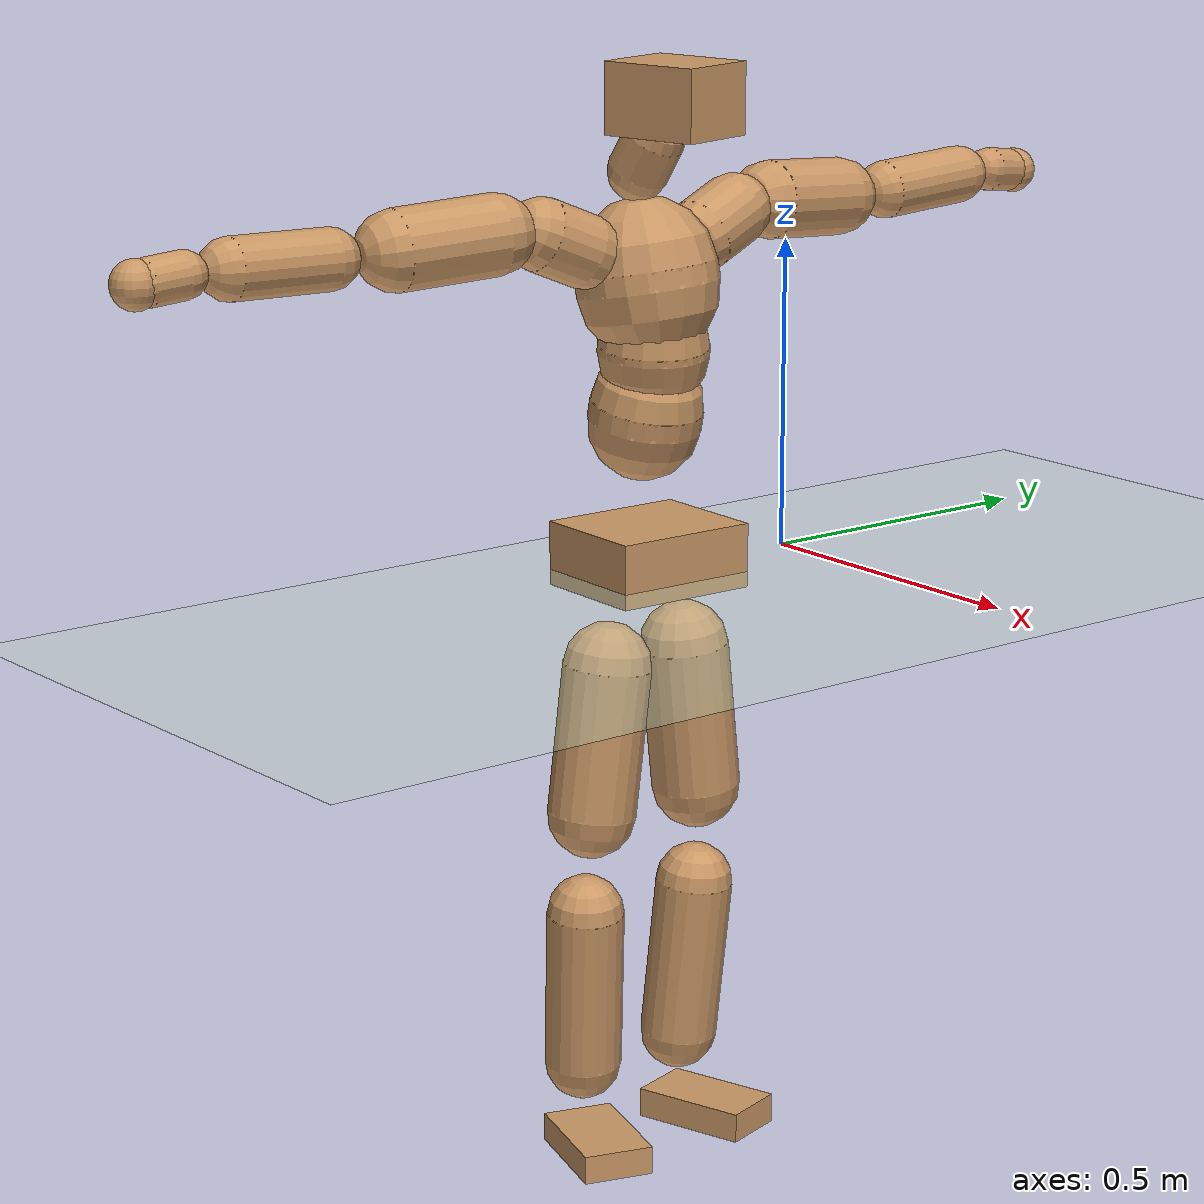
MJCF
<mujoco model="humanoid">
  <compiler coordinate="local" angle="radian"/>
  <default>
    <joint damping="0.0" armature="0.01" stiffness="0.0" limited="true"/>
    <geom conaffinity="1" condim="3" contype="7" margin="0.001" rgba="0.8 0.6 .4 1"/>
  </default>
  <asset>
    <texture type="skybox" builtin="gradient" rgb1=".4 .5 .6" rgb2="0 0 0" width="100" height="100"/>
    <texture builtin="flat" height="1278" mark="cross" markrgb="1 1 1" name="texgeom" random="0.01" rgb1="0.8 0.6 0.4" rgb2="0.8 0.6 0.4" type="cube" width="127"/>
    <texture builtin="checker" height="100" name="texplane" rgb1="0 0 0" rgb2="0.8 0.8 0.8" type="2d" width="100"/>
    <material name="MatPlane" reflectance="0.5" shininess="1" specular="1" texrepeat="60 60" texture="texplane"/>
    <material name="geom" texture="texgeom" texuniform="true"/>
  </asset>
  <worldbody>
    <light cutoff="100" diffuse="1 1 1" dir="-0 0 -1.3" directional="true" exponent="1" pos="0 0 1.3" specular=".1 .1 .1"/>
    <geom conaffinity="1" condim="3" name="floor" pos="0 0 0" rgba="0.8 0.9 0.8 1" size="100 100 .2" type="plane" material="MatPlane"/>
    <body name="Pelvis" pos="-0.0009 -0.2672 0.0328">
      <freejoint name="Pelvis"/>
      <geom type="box" contype="1" conaffinity="1" density="500" pos="-0.0131 0.0003 -0.0087" size="0.0999 0.1205 0.0517" quat="0.9999 0.0000 0.0000 -0.0130" name="Pelvis"/>
      <body name="L_Hip" pos="-0.0188 0.0688 -0.0908">
        <joint name="L_Hip_x" type="hinge" pos="0 0 0" axis="1 0 0" stiffness="800" damping="80" armature="0.02" range="-180.0000 180.0000"/>
        <joint name="L_Hip_y" type="hinge" pos="0 0 0" axis="0 1 0" stiffness="800" damping="80" armature="0.02" range="-180.0000 180.0000"/>
        <joint name="L_Hip_z" type="hinge" pos="0 0 0" axis="0 0 1" stiffness="800" damping="80" armature="0.02" range="-180.0000 180.0000"/>
        <geom type="capsule" contype="1" conaffinity="1" density="500" fromto="0.0003 0.0086 -0.0802 0.0014 0.0344 -0.3208" size="0.0719" name="L_Hip"/>
        <body name="L_Knee" pos="0.0017 0.043 -0.401">
          <joint name="L_Knee_x" type="hinge" pos="0 0 0" axis="1 0 0" stiffness="800" damping="80" armature="0.02" range="-180.0000 180.0000"/>
          <joint name="L_Knee_y" type="hinge" pos="0 0 0" axis="0 1 0" stiffness="800" damping="80" armature="0.02" range="-180.0000 180.0000"/>
          <joint name="L_Knee_z" type="hinge" pos="0 0 0" axis="0 0 1" stiffness="800" damping="80" armature="0.02" range="-180.0000 180.0000"/>
          <geom type="capsule" contype="1" conaffinity="1" density="500" fromto="-0.0089 -0.0035 -0.0901 -0.0356 -0.0140 -0.3604" size="0.0631" name="L_Knee"/>
          <body name="L_Ankle" pos="-0.0445 -0.0175 -0.4506">
            <joint name="L_Ankle_x" type="hinge" pos="0 0 0" axis="1 0 0" stiffness="800" damping="80" armature="0.02" range="-180.0000 180.0000"/>
            <joint name="L_Ankle_y" type="hinge" pos="0 0 0" axis="0 1 0" stiffness="800" damping="80" armature="0.02" range="-180.0000 180.0000"/>
            <joint name="L_Ankle_z" type="hinge" pos="0 0 0" axis="0 0 1" stiffness="800" damping="80" armature="0.02" range="-180.0000 180.0000"/>
            <geom type="box" contype="1" conaffinity="1" density="500" pos="0.0645 0.0189 -0.0317" size="0.0956 0.0539 0.0242" quat="0.9898 0.0000 0.0000 0.1421" name="L_Ankle"/>
            <body name="L_Toe" pos="0.129 0.0378 -0.0634">
              <joint name="L_Toe_x" type="hinge" pos="0 0 0" axis="1 0 0" stiffness="500" damping="50" armature="0.02" range="-180.0000 180.0000"/>
              <joint name="L_Toe_y" type="hinge" pos="0 0 0" axis="0 1 0" stiffness="500" damping="50" armature="0.02" range="-180.0000 180.0000"/>
              <joint name="L_Toe_z" type="hinge" pos="0 0 0" axis="0 0 1" stiffness="500" damping="50" armature="0.02" range="-180.0000 180.0000"/>
              <geom type="box" contype="1" conaffinity="1" density="500" pos="0.0000 0.0000 0.0312" size="0.0011 0.0027 0.0012" quat="0.9891 0.0000 0.0000 0.1470" name="L_Toe"/>
            </body>
          </body>
        </body>
      </body>
      <body name="R_Hip" pos="-0.0144 -0.0715 -0.0988">
        <joint name="R_Hip_x" type="hinge" pos="0 0 0" axis="1 0 0" stiffness="800" damping="80" armature="0.02" range="-180.0000 180.0000"/>
        <joint name="R_Hip_y" type="hinge" pos="0 0 0" axis="0 1 0" stiffness="800" damping="80" armature="0.02" range="-180.0000 180.0000"/>
        <joint name="R_Hip_z" type="hinge" pos="0 0 0" axis="0 0 1" stiffness="800" damping="80" armature="0.02" range="-180.0000 180.0000"/>
        <geom type="capsule" contype="1" conaffinity="1" density="500" fromto="-0.0023 -0.0089 -0.0807 -0.0092 -0.0355 -0.3230" size="0.0716" name="R_Hip"/>
        <body name="R_Knee" pos="-0.0115 -0.0443 -0.4037">
          <joint name="R_Knee_x" type="hinge" pos="0 0 0" axis="1 0 0" stiffness="800" damping="80" armature="0.02" range="-180.0000 180.0000"/>
          <joint name="R_Knee_y" type="hinge" pos="0 0 0" axis="0 1 0" stiffness="800" damping="80" armature="0.02" range="-180.0000 180.0000"/>
          <joint name="R_Knee_z" type="hinge" pos="0 0 0" axis="0 0 1" stiffness="800" damping="80" armature="0.02" range="-180.0000 180.0000"/>
          <geom type="capsule" contype="1" conaffinity="1" density="500" fromto="-0.0082 0.0043 -0.0891 -0.0327 0.0173 -0.3565" size="0.0625" name="R_Knee"/>
          <body name="R_Ankle" pos="-0.0408 0.0216 -0.4456">
            <joint name="R_Ankle_x" type="hinge" pos="0 0 0" axis="1 0 0" stiffness="800" damping="80" armature="0.02" range="-180.0000 180.0000"/>
            <joint name="R_Ankle_y" type="hinge" pos="0 0 0" axis="0 1 0" stiffness="800" damping="80" armature="0.02" range="-180.0000 180.0000"/>
            <joint name="R_Ankle_z" type="hinge" pos="0 0 0" axis="0 0 1" stiffness="800" damping="80" armature="0.02" range="-180.0000 180.0000"/>
            <geom type="box" contype="1" conaffinity="1" density="500" pos="0.0687 -0.0210 -0.0326" size="0.0949 0.0579 0.0231" quat="0.9890 0.0000 0.0000 -0.1480" name="R_Ankle"/>
            <body name="R_Toe" pos="0.1373 -0.0421 -0.0652">
              <joint name="R_Toe_x" type="hinge" pos="0 0 0" axis="1 0 0" stiffness="500" damping="50" armature="0.02" range="-180.0000 180.0000"/>
              <joint name="R_Toe_y" type="hinge" pos="0 0 0" axis="0 1 0" stiffness="500" damping="50" armature="0.02" range="-180.0000 180.0000"/>
              <joint name="R_Toe_z" type="hinge" pos="0 0 0" axis="0 0 1" stiffness="500" damping="50" armature="0.02" range="-180.0000 180.0000"/>
              <geom type="box" contype="1" conaffinity="1" density="500" pos="0.0000 0.0000 0.0337" size="0.0012 0.0028 0.0012" quat="0.9902 0.0000 0.0000 -0.1395" name="R_Toe"/>
            </body>
          </body>
        </body>
      </body>
      <body name="Torso" pos="-0.0455 0.0048 0.1375">
        <joint name="Torso_x" type="hinge" pos="0 0 0" axis="1 0 0" stiffness="1000" damping="100" armature="0.02" range="-180.0000 180.0000"/>
        <joint name="Torso_y" type="hinge" pos="0 0 0" axis="0 1 0" stiffness="1000" damping="100" armature="0.02" range="-180.0000 180.0000"/>
        <joint name="Torso_z" type="hinge" pos="0 0 0" axis="0 0 1" stiffness="1000" damping="100" armature="0.02" range="-180.0000 180.0000"/>
        <geom type="capsule" contype="1" conaffinity="1" density="500" fromto="0.0186 0.0027 0.0917 0.0124 0.0018 0.0611" size="0.0904" name="Torso"/>
        <body name="Spine" pos="0.031 0.0045 0.1528">
          <joint name="Spine_x" type="hinge" pos="0 0 0" axis="1 0 0" stiffness="1000" damping="100" armature="0.02" range="-180.0000 180.0000"/>
          <joint name="Spine_y" type="hinge" pos="0 0 0" axis="0 1 0" stiffness="1000" damping="100" armature="0.02" range="-180.0000 180.0000"/>
          <joint name="Spine_z" type="hinge" pos="0 0 0" axis="0 0 1" stiffness="1000" damping="100" armature="0.02" range="-180.0000 180.0000"/>
          <geom type="capsule" contype="1" conaffinity="1" density="500" fromto="0.0039 -0.0019 0.0372 0.0026 -0.0013 0.0248" size="0.0889" name="Spine"/>
          <body name="Chest" pos="0.0065 -0.0032 0.0621">
            <joint name="Chest_x" type="hinge" pos="0 0 0" axis="1 0 0" stiffness="1000" damping="100" armature="0.02" range="-180.0000 180.0000"/>
            <joint name="Chest_y" type="hinge" pos="0 0 0" axis="0 1 0" stiffness="1000" damping="100" armature="0.02" range="-180.0000 180.0000"/>
            <joint name="Chest_z" type="hinge" pos="0 0 0" axis="0 0 1" stiffness="1000" damping="100" armature="0.02" range="-180.0000 180.0000"/>
            <geom type="capsule" contype="1" conaffinity="1" density="500" fromto="-0.0152 -0.0048 0.0940 -0.0101 -0.0032 0.0627" size="0.113" name="Chest"/>
            <body name="Neck" pos="-0.0376 -0.0132 0.2267">
              <joint name="Neck_x" type="hinge" pos="0 0 0" axis="1 0 0" stiffness="500" damping="50" armature="0.02" range="-180.0000 180.0000"/>
              <joint name="Neck_y" type="hinge" pos="0 0 0" axis="0 1 0" stiffness="500" damping="50" armature="0.02" range="-180.0000 180.0000"/>
              <joint name="Neck_z" type="hinge" pos="0 0 0" axis="0 0 1" stiffness="500" damping="50" armature="0.02" range="-180.0000 180.0000"/>
              <geom type="capsule" contype="1" conaffinity="1" density="500" fromto="0.0108 0.0021 0.0179 0.0431 0.0086 0.0715" size="0.0484" name="Neck"/>
              <body name="Head" pos="0.0539 0.0107 0.0894">
                <joint name="Head_x" type="hinge" pos="0 0 0" axis="1 0 0" stiffness="500" damping="50" armature="0.02" range="-180.0000 180.0000"/>
                <joint name="Head_y" type="hinge" pos="0 0 0" axis="0 1 0" stiffness="500" damping="50" armature="0.02" range="-180.0000 180.0000"/>
                <joint name="Head_z" type="hinge" pos="0 0 0" axis="0 0 1" stiffness="500" damping="50" armature="0.02" range="-180.0000 180.0000"/>
                <geom type="box" contype="1" conaffinity="1" density="500" pos="0.0280 0.0064 0.0457" size="0.0828 0.0678 0.0563" quat="0.9938 0.0000 0.0000 0.1115" name="Head"/>
              </body>
            </body>
            <body name="L_Thorax" pos="-0.0158 0.0822 0.123">
              <joint name="L_Thorax_x" type="hinge" pos="0 0 0" axis="1 0 0" stiffness="500" damping="50" armature="0.02" range="-180.0000 180.0000"/>
              <joint name="L_Thorax_y" type="hinge" pos="0 0 0" axis="0 1 0" stiffness="500" damping="50" armature="0.02" range="-180.0000 180.0000"/>
              <joint name="L_Thorax_z" type="hinge" pos="0 0 0" axis="0 0 1" stiffness="500" damping="50" armature="0.02" range="-180.0000 180.0000"/>
              <geom type="capsule" contype="1" conaffinity="1" density="500" fromto="-0.0049 0.0270 0.0102 -0.0196 0.1081 0.0406" size="0.059" name="L_Thorax"/>
              <body name="L_Shoulder" pos="-0.0246 0.1352 0.0508">
                <joint name="L_Shoulder_x" type="hinge" pos="0 0 0" axis="1 0 0" stiffness="500" damping="50" armature="0.02" range="-720.0000 720.0000"/>
                <joint name="L_Shoulder_y" type="hinge" pos="0 0 0" axis="0 1 0" stiffness="500" damping="50" armature="0.02" range="-720.0000 720.0000"/>
                <joint name="L_Shoulder_z" type="hinge" pos="0 0 0" axis="0 0 1" stiffness="500" damping="50" armature="0.02" range="-720.0000 720.0000"/>
                <geom type="capsule" contype="1" conaffinity="1" density="500" fromto="-0.0055 0.0538 -0.0038 -0.0220 0.2151 -0.0153" size="0.0629" name="L_Shoulder"/>
                <body name="L_Elbow" pos="-0.0275 0.2689 -0.0192">
                  <joint name="L_Elbow_x" type="hinge" pos="0 0 0" axis="1 0 0" stiffness="500" damping="50" armature="0.02" range="-720.0000 720.0000"/>
                  <joint name="L_Elbow_y" type="hinge" pos="0 0 0" axis="0 1 0" stiffness="500" damping="50" armature="0.02" range="-720.0000 720.0000"/>
                  <joint name="L_Elbow_z" type="hinge" pos="0 0 0" axis="0 0 1" stiffness="500" damping="50" armature="0.02" range="-720.0000 720.0000"/>
                  <geom type="capsule" contype="1" conaffinity="1" density="500" fromto="-0.0010 0.0559 0.0032 -0.0040 0.2238 0.0130" size="0.0473" name="L_Elbow"/>
                  <body name="L_Wrist" pos="-0.0049 0.2797 0.0162">
                    <joint name="L_Wrist_x" type="hinge" pos="0 0 0" axis="1 0 0" stiffness="300" damping="30" armature="0.02" range="-180.0000 180.0000"/>
                    <joint name="L_Wrist_y" type="hinge" pos="0 0 0" axis="0 1 0" stiffness="300" damping="30" armature="0.02" range="-180.0000 180.0000"/>
                    <joint name="L_Wrist_z" type="hinge" pos="0 0 0" axis="0 0 1" stiffness="300" damping="30" armature="0.02" range="-180.0000 180.0000"/>
                    <geom type="capsule" contype="1" conaffinity="1" density="500" fromto="-0.0032 0.0180 -0.0023 -0.0130 0.0721 -0.0091" size="0.036" name="L_Wrist"/>
                    <body name="L_Hand" pos="-0.0162 0.0902 -0.0114">
                      <joint name="L_Hand_x" type="hinge" pos="0 0 0" axis="1 0 0" stiffness="300" damping="30" armature="0.02" range="-180.0000 180.0000"/>
                      <joint name="L_Hand_y" type="hinge" pos="0 0 0" axis="0 1 0" stiffness="300" damping="30" armature="0.02" range="-180.0000 180.0000"/>
                      <joint name="L_Hand_z" type="hinge" pos="0 0 0" axis="0 0 1" stiffness="300" damping="30" armature="0.02" range="-180.0000 180.0000"/>
                      <geom type="sphere" contype="1" conaffinity="1" density="500" size="0.0372" pos="0.0000 0.0000 0.0000" name="L_Hand"/>
                    </body>
                  </body>
                </body>
              </body>
            </body>
            <body name="R_Thorax" pos="-0.0225 -0.093 0.1204">
              <joint name="R_Thorax_x" type="hinge" pos="0 0 0" axis="1 0 0" stiffness="500" damping="50" armature="0.02" range="-180.0000 180.0000"/>
              <joint name="R_Thorax_y" type="hinge" pos="0 0 0" axis="0 1 0" stiffness="500" damping="50" armature="0.02" range="-180.0000 180.0000"/>
              <joint name="R_Thorax_z" type="hinge" pos="0 0 0" axis="0 0 1" stiffness="500" damping="50" armature="0.02" range="-180.0000 180.0000"/>
              <geom type="capsule" contype="1" conaffinity="1" density="500" fromto="-0.0024 -0.0252 0.0107 -0.0097 -0.1008 0.0427" size="0.0588" name="R_Thorax"/>
              <body name="R_Shoulder" pos="-0.0121 -0.126 0.0534">
                <joint name="R_Shoulder_x" type="hinge" pos="0 0 0" axis="1 0 0" stiffness="500" damping="50" armature="0.02" range="-720.0000 720.0000"/>
                <joint name="R_Shoulder_y" type="hinge" pos="0 0 0" axis="0 1 0" stiffness="500" damping="50" armature="0.02" range="-720.0000 720.0000"/>
                <joint name="R_Shoulder_z" type="hinge" pos="0 0 0" axis="0 0 1" stiffness="500" damping="50" armature="0.02" range="-720.0000 720.0000"/>
                <geom type="capsule" contype="1" conaffinity="1" density="500" fromto="-0.0079 -0.0553 -0.0033 -0.0317 -0.2212 -0.0131" size="0.0636" name="R_Shoulder"/>
                <body name="R_Elbow" pos="-0.0396 -0.2765 -0.0163">
                  <joint name="R_Elbow_x" type="hinge" pos="0 0 0" axis="1 0 0" stiffness="500" damping="50" armature="0.02" range="-720.0000 720.0000"/>
                  <joint name="R_Elbow_y" type="hinge" pos="0 0 0" axis="0 1 0" stiffness="500" damping="50" armature="0.02" range="-720.0000 720.0000"/>
                  <joint name="R_Elbow_z" type="hinge" pos="0 0 0" axis="0 0 1" stiffness="500" damping="50" armature="0.02" range="-720.0000 720.0000"/>
                  <geom type="capsule" contype="1" conaffinity="1" density="500" fromto="-0.0012 -0.0565 0.0011 -0.0047 -0.2261 0.0044" size="0.048" name="R_Elbow"/>
                  <body name="R_Wrist" pos="-0.0059 -0.2826 0.0055">
                    <joint name="R_Wrist_x" type="hinge" pos="0 0 0" axis="1 0 0" stiffness="300" damping="30" armature="0.02" range="-180.0000 180.0000"/>
                    <joint name="R_Wrist_y" type="hinge" pos="0 0 0" axis="0 1 0" stiffness="300" damping="30" armature="0.02" range="-180.0000 180.0000"/>
                    <joint name="R_Wrist_z" type="hinge" pos="0 0 0" axis="0 0 1" stiffness="300" damping="30" armature="0.02" range="-180.0000 180.0000"/>
                    <geom type="capsule" contype="1" conaffinity="1" density="500" fromto="-0.0021 -0.0186 -0.0019 -0.0084 -0.0745 -0.0075" size="0.0369" name="R_Wrist"/>
                    <body name="R_Hand" pos="-0.0105 -0.0931 -0.0093">
                      <joint name="R_Hand_x" type="hinge" pos="0 0 0" axis="1 0 0" stiffness="300" damping="30" armature="0.02" range="-180.0000 180.0000"/>
                      <joint name="R_Hand_y" type="hinge" pos="0 0 0" axis="0 1 0" stiffness="300" damping="30" armature="0.02" range="-180.0000 180.0000"/>
                      <joint name="R_Hand_z" type="hinge" pos="0 0 0" axis="0 0 1" stiffness="300" damping="30" armature="0.02" range="-180.0000 180.0000"/>
                      <geom type="sphere" contype="1" conaffinity="1" density="500" size="0.0380" pos="0.0000 0.0000 0.0000" name="R_Hand"/>
                    </body>
                  </body>
                </body>
              </body>
            </body>
          </body>
        </body>
      </body>
    </body>
  </worldbody>
  <actuator>
    <motor name="L_Hip_x" joint="L_Hip_x" gear="500"/>
    <motor name="L_Hip_y" joint="L_Hip_y" gear="500"/>
    <motor name="L_Hip_z" joint="L_Hip_z" gear="500"/>
    <motor name="L_Knee_x" joint="L_Knee_x" gear="500"/>
    <motor name="L_Knee_y" joint="L_Knee_y" gear="500"/>
    <motor name="L_Knee_z" joint="L_Knee_z" gear="500"/>
    <motor name="L_Ankle_x" joint="L_Ankle_x" gear="500"/>
    <motor name="L_Ankle_y" joint="L_Ankle_y" gear="500"/>
    <motor name="L_Ankle_z" joint="L_Ankle_z" gear="500"/>
    <motor name="L_Toe_x" joint="L_Toe_x" gear="500"/>
    <motor name="L_Toe_y" joint="L_Toe_y" gear="500"/>
    <motor name="L_Toe_z" joint="L_Toe_z" gear="500"/>
    <motor name="R_Hip_x" joint="R_Hip_x" gear="500"/>
    <motor name="R_Hip_y" joint="R_Hip_y" gear="500"/>
    <motor name="R_Hip_z" joint="R_Hip_z" gear="500"/>
    <motor name="R_Knee_x" joint="R_Knee_x" gear="500"/>
    <motor name="R_Knee_y" joint="R_Knee_y" gear="500"/>
    <motor name="R_Knee_z" joint="R_Knee_z" gear="500"/>
    <motor name="R_Ankle_x" joint="R_Ankle_x" gear="500"/>
    <motor name="R_Ankle_y" joint="R_Ankle_y" gear="500"/>
    <motor name="R_Ankle_z" joint="R_Ankle_z" gear="500"/>
    <motor name="R_Toe_x" joint="R_Toe_x" gear="500"/>
    <motor name="R_Toe_y" joint="R_Toe_y" gear="500"/>
    <motor name="R_Toe_z" joint="R_Toe_z" gear="500"/>
    <motor name="Torso_x" joint="Torso_x" gear="500"/>
    <motor name="Torso_y" joint="Torso_y" gear="500"/>
    <motor name="Torso_z" joint="Torso_z" gear="500"/>
    <motor name="Spine_x" joint="Spine_x" gear="500"/>
    <motor name="Spine_y" joint="Spine_y" gear="500"/>
    <motor name="Spine_z" joint="Spine_z" gear="500"/>
    <motor name="Chest_x" joint="Chest_x" gear="500"/>
    <motor name="Chest_y" joint="Chest_y" gear="500"/>
    <motor name="Chest_z" joint="Chest_z" gear="500"/>
    <motor name="Neck_x" joint="Neck_x" gear="500"/>
    <motor name="Neck_y" joint="Neck_y" gear="500"/>
    <motor name="Neck_z" joint="Neck_z" gear="500"/>
    <motor name="Head_x" joint="Head_x" gear="500"/>
    <motor name="Head_y" joint="Head_y" gear="500"/>
    <motor name="Head_z" joint="Head_z" gear="500"/>
    <motor name="L_Thorax_x" joint="L_Thorax_x" gear="500"/>
    <motor name="L_Thorax_y" joint="L_Thorax_y" gear="500"/>
    <motor name="L_Thorax_z" joint="L_Thorax_z" gear="500"/>
    <motor name="L_Shoulder_x" joint="L_Shoulder_x" gear="500"/>
    <motor name="L_Shoulder_y" joint="L_Shoulder_y" gear="500"/>
    <motor name="L_Shoulder_z" joint="L_Shoulder_z" gear="500"/>
    <motor name="L_Elbow_x" joint="L_Elbow_x" gear="500"/>
    <motor name="L_Elbow_y" joint="L_Elbow_y" gear="500"/>
    <motor name="L_Elbow_z" joint="L_Elbow_z" gear="500"/>
    <motor name="L_Wrist_x" joint="L_Wrist_x" gear="500"/>
    <motor name="L_Wrist_y" joint="L_Wrist_y" gear="500"/>
    <motor name="L_Wrist_z" joint="L_Wrist_z" gear="500"/>
    <motor name="L_Hand_x" joint="L_Hand_x" gear="500"/>
    <motor name="L_Hand_y" joint="L_Hand_y" gear="500"/>
    <motor name="L_Hand_z" joint="L_Hand_z" gear="500"/>
    <motor name="R_Thorax_x" joint="R_Thorax_x" gear="500"/>
    <motor name="R_Thorax_y" joint="R_Thorax_y" gear="500"/>
    <motor name="R_Thorax_z" joint="R_Thorax_z" gear="500"/>
    <motor name="R_Shoulder_x" joint="R_Shoulder_x" gear="500"/>
    <motor name="R_Shoulder_y" joint="R_Shoulder_y" gear="500"/>
    <motor name="R_Shoulder_z" joint="R_Shoulder_z" gear="500"/>
    <motor name="R_Elbow_x" joint="R_Elbow_x" gear="500"/>
    <motor name="R_Elbow_y" joint="R_Elbow_y" gear="500"/>
    <motor name="R_Elbow_z" joint="R_Elbow_z" gear="500"/>
    <motor name="R_Wrist_x" joint="R_Wrist_x" gear="500"/>
    <motor name="R_Wrist_y" joint="R_Wrist_y" gear="500"/>
    <motor name="R_Wrist_z" joint="R_Wrist_z" gear="500"/>
    <motor name="R_Hand_x" joint="R_Hand_x" gear="500"/>
    <motor name="R_Hand_y" joint="R_Hand_y" gear="500"/>
    <motor name="R_Hand_z" joint="R_Hand_z" gear="500"/>
  </actuator>
  <contact>
    <exclude body1="Torso" body2="Chest"/>
    <exclude body1="Head" body2="Chest"/>
    <exclude body1="R_Knee" body2="R_Toe"/>
    <exclude body1="R_Knee" body2="L_Ankle"/>
    <exclude body1="R_Knee" body2="L_Toe"/>
    <exclude body1="L_Knee" body2="L_Toe"/>
    <exclude body1="L_Knee" body2="R_Ankle"/>
    <exclude body1="L_Knee" body2="R_Toe"/>
    <exclude body1="L_Shoulder" body2="Chest"/>
    <exclude body1="R_Shoulder" body2="Chest"/>
  </contact>
  <sensor/>
  <size njmax="700" nconmax="700"/>
</mujoco>
